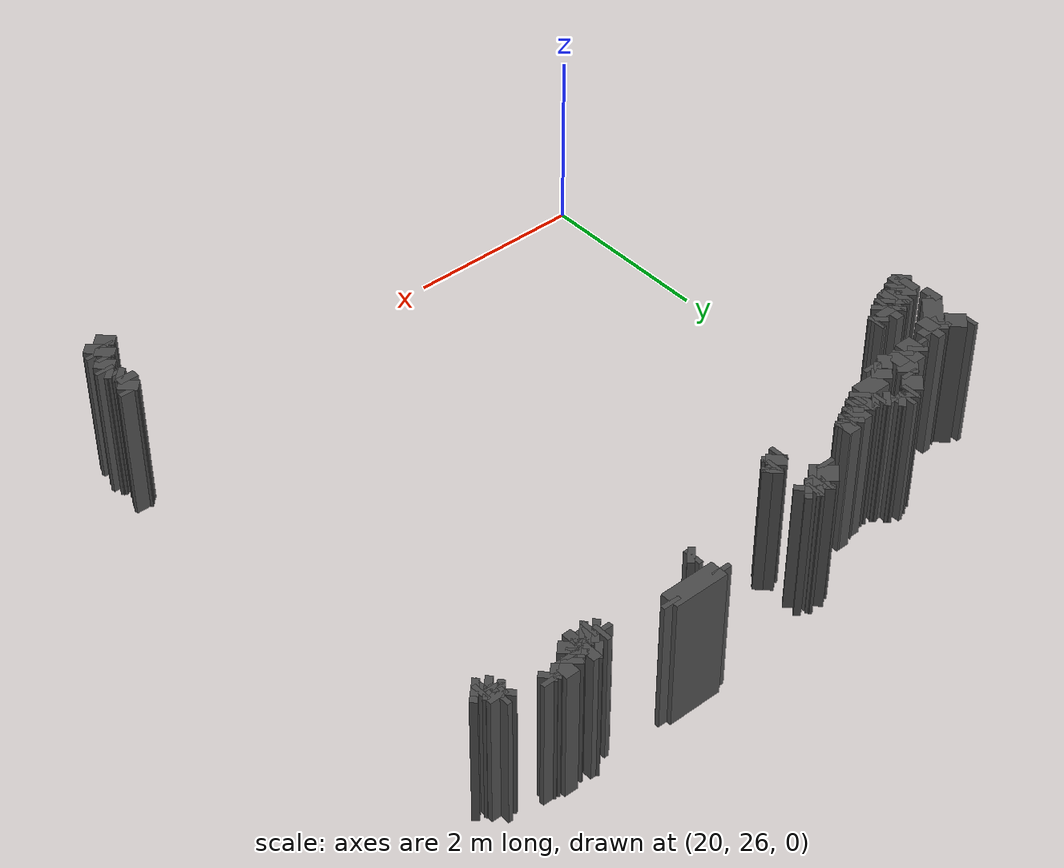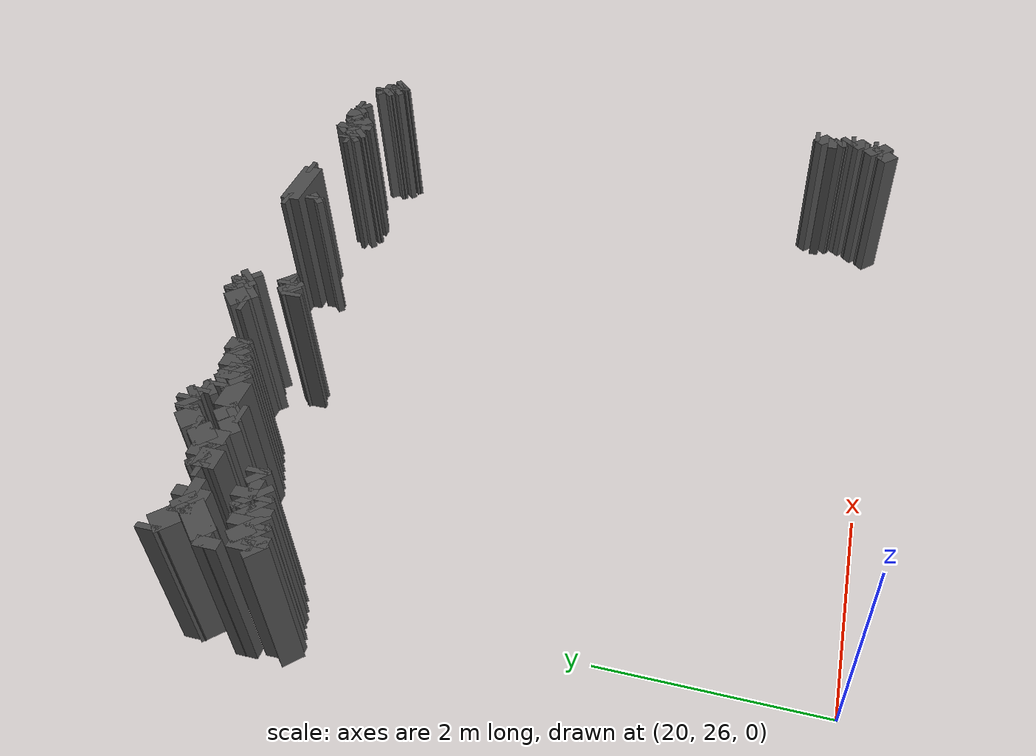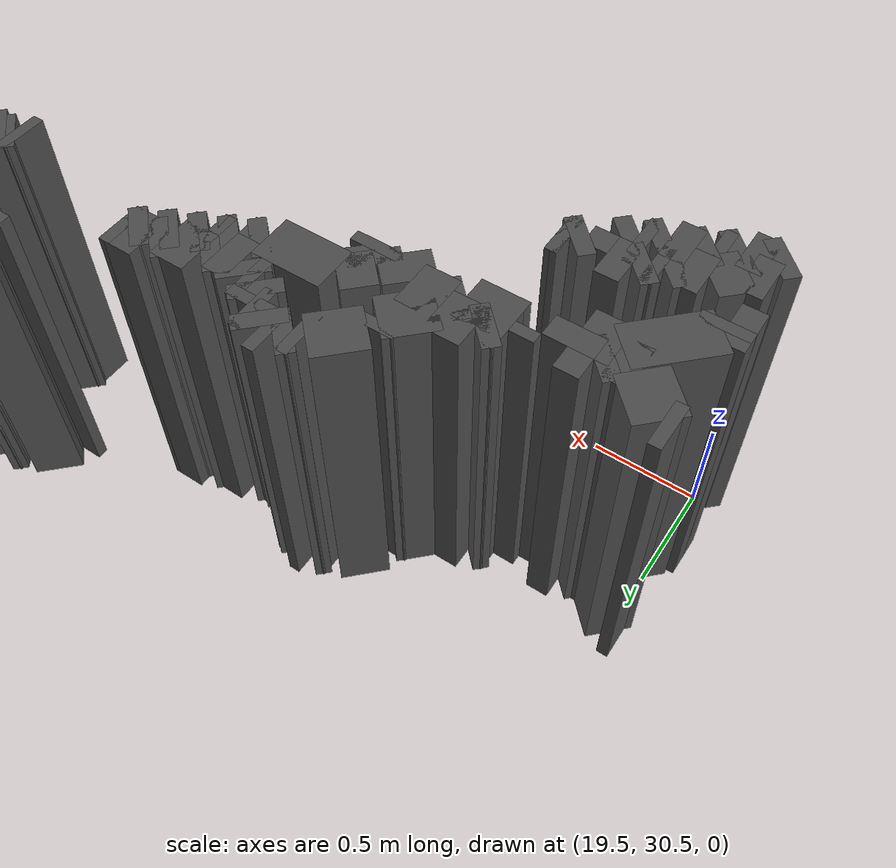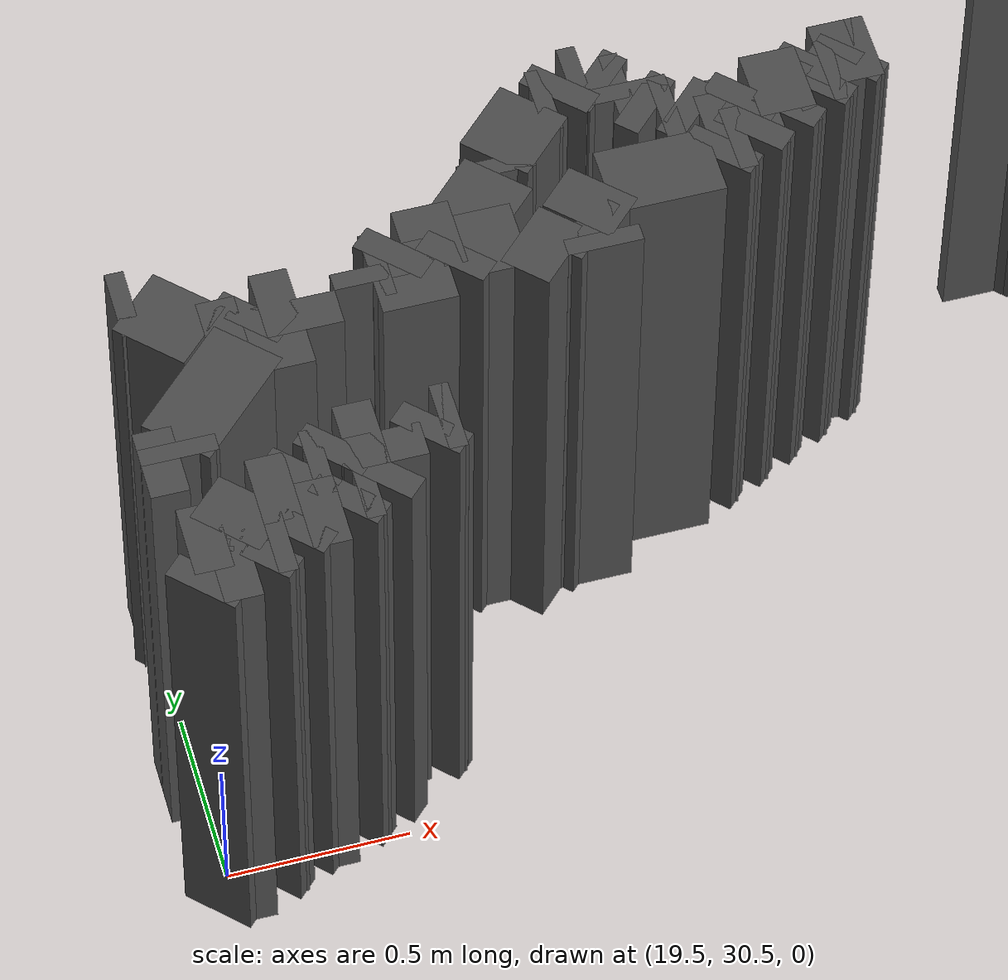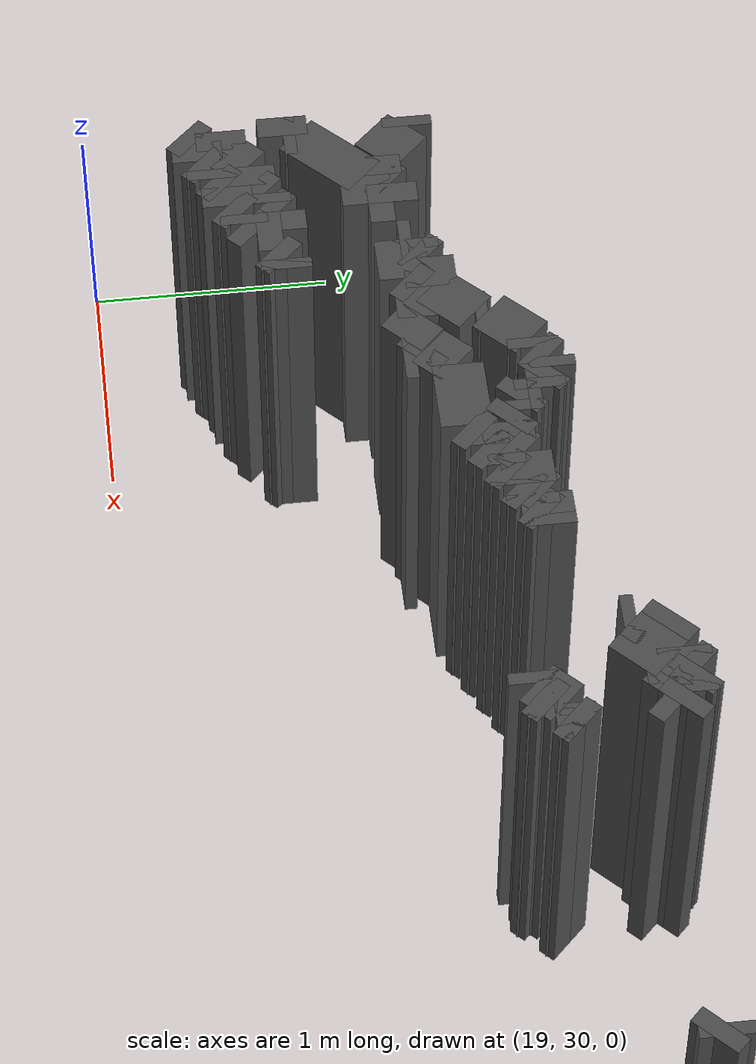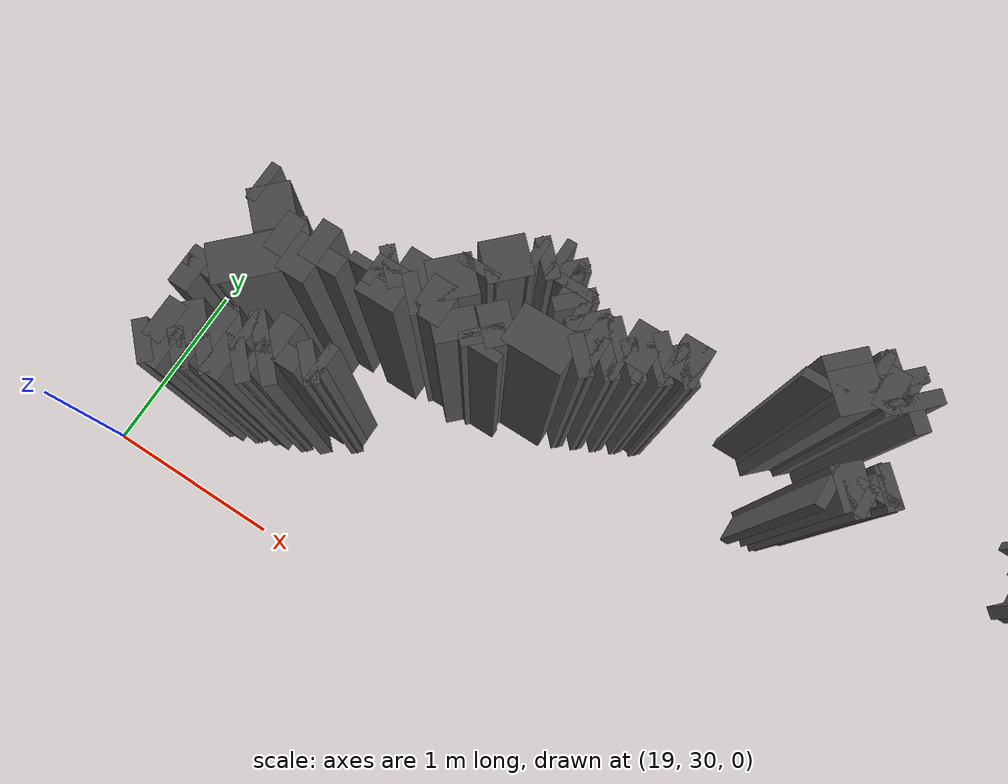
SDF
<sdf version="1.9">
 <model name="generated_walls">
  <static>true</static>
  <link name="wall_27_0">
   <pose>25.025 31.925 0.75 0 0 2.356</pose>
   <collision name="collision"><geometry><box><size>0.071 0.2 1.5</size></box></geometry></collision>
   <visual name="visual">
    <geometry><box><size>0.071 0.2 1.5</size></box></geometry>
    <material><ambient>0.3 0.3 0.3 1</ambient></material>
   </visual>
  </link>
  <link name="wall_27_1">
   <pose>24.975 31.950 0.75 0 0 3.142</pose>
   <collision name="collision"><geometry><box><size>0.050 0.2 1.5</size></box></geometry></collision>
   <visual name="visual">
    <geometry><box><size>0.050 0.2 1.5</size></box></geometry>
    <material><ambient>0.3 0.3 0.3 1</ambient></material>
   </visual>
  </link>
  <link name="wall_27_2">
   <pose>24.925 31.975 0.75 0 0 2.356</pose>
   <collision name="collision"><geometry><box><size>0.071 0.2 1.5</size></box></geometry></collision>
   <visual name="visual">
    <geometry><box><size>0.071 0.2 1.5</size></box></geometry>
    <material><ambient>0.3 0.3 0.3 1</ambient></material>
   </visual>
  </link>
  <link name="wall_27_3">
   <pose>24.900 32.025 0.75 0 0 1.571</pose>
   <collision name="collision"><geometry><box><size>0.050 0.2 1.5</size></box></geometry></collision>
   <visual name="visual">
    <geometry><box><size>0.050 0.2 1.5</size></box></geometry>
    <material><ambient>0.3 0.3 0.3 1</ambient></material>
   </visual>
  </link>
  <link name="wall_27_4">
   <pose>24.925 32.050 0.75 0 0 0.000</pose>
   <collision name="collision"><geometry><box><size>0.050 0.2 1.5</size></box></geometry></collision>
   <visual name="visual">
    <geometry><box><size>0.050 0.2 1.5</size></box></geometry>
    <material><ambient>0.3 0.3 0.3 1</ambient></material>
   </visual>
  </link>
  <link name="wall_27_5">
   <pose>24.975 32.025 0.75 0 0 -0.785</pose>
   <collision name="collision"><geometry><box><size>0.071 0.2 1.5</size></box></geometry></collision>
   <visual name="visual">
    <geometry><box><size>0.071 0.2 1.5</size></box></geometry>
    <material><ambient>0.3 0.3 0.3 1</ambient></material>
   </visual>
  </link>
  <link name="wall_27_6">
   <pose>25.050 32.000 0.75 0 0 0.000</pose>
   <collision name="collision"><geometry><box><size>0.100 0.2 1.5</size></box></geometry></collision>
   <visual name="visual">
    <geometry><box><size>0.100 0.2 1.5</size></box></geometry>
    <material><ambient>0.3 0.3 0.3 1</ambient></material>
   </visual>
  </link>
  <link name="wall_27_7">
   <pose>25.125 32.025 0.75 0 0 0.785</pose>
   <collision name="collision"><geometry><box><size>0.071 0.2 1.5</size></box></geometry></collision>
   <visual name="visual">
    <geometry><box><size>0.071 0.2 1.5</size></box></geometry>
    <material><ambient>0.3 0.3 0.3 1</ambient></material>
   </visual>
  </link>
  <link name="wall_27_8">
   <pose>25.175 32.050 0.75 0 0 0.000</pose>
   <collision name="collision"><geometry><box><size>0.050 0.2 1.5</size></box></geometry></collision>
   <visual name="visual">
    <geometry><box><size>0.050 0.2 1.5</size></box></geometry>
    <material><ambient>0.3 0.3 0.3 1</ambient></material>
   </visual>
  </link>
  <link name="wall_27_9">
   <pose>25.225 32.075 0.75 0 0 0.785</pose>
   <collision name="collision"><geometry><box><size>0.071 0.2 1.5</size></box></geometry></collision>
   <visual name="visual">
    <geometry><box><size>0.071 0.2 1.5</size></box></geometry>
    <material><ambient>0.3 0.3 0.3 1</ambient></material>
   </visual>
  </link>
  <link name="wall_27_10">
   <pose>25.225 32.125 0.75 0 0 2.356</pose>
   <collision name="collision"><geometry><box><size>0.071 0.2 1.5</size></box></geometry></collision>
   <visual name="visual">
    <geometry><box><size>0.071 0.2 1.5</size></box></geometry>
    <material><ambient>0.3 0.3 0.3 1</ambient></material>
   </visual>
  </link>
  <link name="wall_27_11">
   <pose>25.150 32.150 0.75 0 0 3.142</pose>
   <collision name="collision"><geometry><box><size>0.100 0.2 1.5</size></box></geometry></collision>
   <visual name="visual">
    <geometry><box><size>0.100 0.2 1.5</size></box></geometry>
    <material><ambient>0.3 0.3 0.3 1</ambient></material>
   </visual>
  </link>
  <link name="wall_27_12">
   <pose>25.075 32.175 0.75 0 0 2.356</pose>
   <collision name="collision"><geometry><box><size>0.071 0.2 1.5</size></box></geometry></collision>
   <visual name="visual">
    <geometry><box><size>0.071 0.2 1.5</size></box></geometry>
    <material><ambient>0.3 0.3 0.3 1</ambient></material>
   </visual>
  </link>
  <link name="wall_27_17">
   <pose>24.250 32.175 0.75 0 0 -1.571</pose>
   <collision name="collision"><geometry><box><size>0.050 0.2 1.5</size></box></geometry></collision>
   <visual name="visual">
    <geometry><box><size>0.050 0.2 1.5</size></box></geometry>
    <material><ambient>0.3 0.3 0.3 1</ambient></material>
   </visual>
  </link>
  <link name="wall_27_18">
   <pose>23.950 32.150 0.75 0 0 3.142</pose>
   <collision name="collision"><geometry><box><size>0.600 0.2 1.5</size></box></geometry></collision>
   <visual name="visual">
    <geometry><box><size>0.600 0.2 1.5</size></box></geometry>
    <material><ambient>0.3 0.3 0.3 1</ambient></material>
   </visual>
  </link>
  <link name="wall_27_19">
   <pose>23.650 32.175 0.75 0 0 1.571</pose>
   <collision name="collision"><geometry><box><size>0.050 0.2 1.5</size></box></geometry></collision>
   <visual name="visual">
    <geometry><box><size>0.050 0.2 1.5</size></box></geometry>
    <material><ambient>0.3 0.3 0.3 1</ambient></material>
   </visual>
  </link>
  <link name="wall_27_52">
   <pose>25.600 32.175 0.75 0 0 -1.571</pose>
   <collision name="collision"><geometry><box><size>0.050 0.2 1.5</size></box></geometry></collision>
   <visual name="visual">
    <geometry><box><size>0.050 0.2 1.5</size></box></geometry>
    <material><ambient>0.3 0.3 0.3 1</ambient></material>
   </visual>
  </link>
  <link name="wall_27_53">
   <pose>25.575 32.125 0.75 0 0 -2.356</pose>
   <collision name="collision"><geometry><box><size>0.071 0.2 1.5</size></box></geometry></collision>
   <visual name="visual">
    <geometry><box><size>0.071 0.2 1.5</size></box></geometry>
    <material><ambient>0.3 0.3 0.3 1</ambient></material>
   </visual>
  </link>
  <link name="wall_27_54">
   <pose>25.525 32.125 0.75 0 0 2.356</pose>
   <collision name="collision"><geometry><box><size>0.071 0.2 1.5</size></box></geometry></collision>
   <visual name="visual">
    <geometry><box><size>0.071 0.2 1.5</size></box></geometry>
    <material><ambient>0.3 0.3 0.3 1</ambient></material>
   </visual>
  </link>
  <link name="wall_27_55">
   <pose>25.425 32.150 0.75 0 0 3.142</pose>
   <collision name="collision"><geometry><box><size>0.150 0.2 1.5</size></box></geometry></collision>
   <visual name="visual">
    <geometry><box><size>0.150 0.2 1.5</size></box></geometry>
    <material><ambient>0.3 0.3 0.3 1</ambient></material>
   </visual>
  </link>
  <link name="wall_27_56">
   <pose>25.325 32.125 0.75 0 0 -2.356</pose>
   <collision name="collision"><geometry><box><size>0.071 0.2 1.5</size></box></geometry></collision>
   <visual name="visual">
    <geometry><box><size>0.071 0.2 1.5</size></box></geometry>
    <material><ambient>0.3 0.3 0.3 1</ambient></material>
   </visual>
  </link>
  <link name="wall_27_57">
   <pose>25.300 32.075 0.75 0 0 -1.571</pose>
   <collision name="collision"><geometry><box><size>0.050 0.2 1.5</size></box></geometry></collision>
   <visual name="visual">
    <geometry><box><size>0.050 0.2 1.5</size></box></geometry>
    <material><ambient>0.3 0.3 0.3 1</ambient></material>
   </visual>
  </link>
  <link name="wall_27_58">
   <pose>25.250 32.000 0.75 0 0 -2.356</pose>
   <collision name="collision"><geometry><box><size>0.141 0.2 1.5</size></box></geometry></collision>
   <visual name="visual">
    <geometry><box><size>0.141 0.2 1.5</size></box></geometry>
    <material><ambient>0.3 0.3 0.3 1</ambient></material>
   </visual>
  </link>
  <link name="wall_27_59">
   <pose>25.150 31.950 0.75 0 0 3.142</pose>
   <collision name="collision"><geometry><box><size>0.100 0.2 1.5</size></box></geometry></collision>
   <visual name="visual">
    <geometry><box><size>0.100 0.2 1.5</size></box></geometry>
    <material><ambient>0.3 0.3 0.3 1</ambient></material>
   </visual>
  </link>
  <link name="wall_28_0">
   <pose>23.725 31.875 0.75 0 0 2.356</pose>
   <collision name="collision"><geometry><box><size>0.071 0.2 1.5</size></box></geometry></collision>
   <visual name="visual">
    <geometry><box><size>0.071 0.2 1.5</size></box></geometry>
    <material><ambient>0.3 0.3 0.3 1</ambient></material>
   </visual>
  </link>
  <link name="wall_28_1">
   <pose>23.725 31.900 0.75 0 0 0.000</pose>
   <collision name="collision"><geometry><box><size>0.050 0.2 1.5</size></box></geometry></collision>
   <visual name="visual">
    <geometry><box><size>0.050 0.2 1.5</size></box></geometry>
    <material><ambient>0.3 0.3 0.3 1</ambient></material>
   </visual>
  </link>
  <link name="wall_29_0">
   <pose>22.000 31.825 0.75 0 0 1.571</pose>
   <collision name="collision"><geometry><box><size>0.050 0.2 1.5</size></box></geometry></collision>
   <visual name="visual">
    <geometry><box><size>0.050 0.2 1.5</size></box></geometry>
    <material><ambient>0.3 0.3 0.3 1</ambient></material>
   </visual>
  </link>
  <link name="wall_29_1">
   <pose>22.075 31.925 0.75 0 0 0.785</pose>
   <collision name="collision"><geometry><box><size>0.212 0.2 1.5</size></box></geometry></collision>
   <visual name="visual">
    <geometry><box><size>0.212 0.2 1.5</size></box></geometry>
    <material><ambient>0.3 0.3 0.3 1</ambient></material>
   </visual>
  </link>
  <link name="wall_29_2">
   <pose>22.175 32.000 0.75 0 0 0.000</pose>
   <collision name="collision"><geometry><box><size>0.050 0.2 1.5</size></box></geometry></collision>
   <visual name="visual">
    <geometry><box><size>0.050 0.2 1.5</size></box></geometry>
    <material><ambient>0.3 0.3 0.3 1</ambient></material>
   </visual>
  </link>
  <link name="wall_29_3">
   <pose>22.225 32.025 0.75 0 0 0.785</pose>
   <collision name="collision"><geometry><box><size>0.071 0.2 1.5</size></box></geometry></collision>
   <visual name="visual">
    <geometry><box><size>0.071 0.2 1.5</size></box></geometry>
    <material><ambient>0.3 0.3 0.3 1</ambient></material>
   </visual>
  </link>
  <link name="wall_29_4">
   <pose>22.275 32.025 0.75 0 0 -0.785</pose>
   <collision name="collision"><geometry><box><size>0.071 0.2 1.5</size></box></geometry></collision>
   <visual name="visual">
    <geometry><box><size>0.071 0.2 1.5</size></box></geometry>
    <material><ambient>0.3 0.3 0.3 1</ambient></material>
   </visual>
  </link>
  <link name="wall_29_5">
   <pose>22.325 32.000 0.75 0 0 0.000</pose>
   <collision name="collision"><geometry><box><size>0.050 0.2 1.5</size></box></geometry></collision>
   <visual name="visual">
    <geometry><box><size>0.050 0.2 1.5</size></box></geometry>
    <material><ambient>0.3 0.3 0.3 1</ambient></material>
   </visual>
  </link>
  <link name="wall_29_6">
   <pose>22.375 31.975 0.75 0 0 -0.785</pose>
   <collision name="collision"><geometry><box><size>0.071 0.2 1.5</size></box></geometry></collision>
   <visual name="visual">
    <geometry><box><size>0.071 0.2 1.5</size></box></geometry>
    <material><ambient>0.3 0.3 0.3 1</ambient></material>
   </visual>
  </link>
  <link name="wall_29_7">
   <pose>22.375 31.925 0.75 0 0 -2.356</pose>
   <collision name="collision"><geometry><box><size>0.071 0.2 1.5</size></box></geometry></collision>
   <visual name="visual">
    <geometry><box><size>0.071 0.2 1.5</size></box></geometry>
    <material><ambient>0.3 0.3 0.3 1</ambient></material>
   </visual>
  </link>
  <link name="wall_29_8">
   <pose>22.325 31.925 0.75 0 0 2.356</pose>
   <collision name="collision"><geometry><box><size>0.071 0.2 1.5</size></box></geometry></collision>
   <visual name="visual">
    <geometry><box><size>0.071 0.2 1.5</size></box></geometry>
    <material><ambient>0.3 0.3 0.3 1</ambient></material>
   </visual>
  </link>
  <link name="wall_29_9">
   <pose>22.250 31.950 0.75 0 0 3.142</pose>
   <collision name="collision"><geometry><box><size>0.100 0.2 1.5</size></box></geometry></collision>
   <visual name="visual">
    <geometry><box><size>0.100 0.2 1.5</size></box></geometry>
    <material><ambient>0.3 0.3 0.3 1</ambient></material>
   </visual>
  </link>
  <link name="wall_29_10">
   <pose>22.125 31.875 0.75 0 0 -2.356</pose>
   <collision name="collision"><geometry><box><size>0.212 0.2 1.5</size></box></geometry></collision>
   <visual name="visual">
    <geometry><box><size>0.212 0.2 1.5</size></box></geometry>
    <material><ambient>0.3 0.3 0.3 1</ambient></material>
   </visual>
  </link>
  <link name="wall_32_0">
   <pose>22.225 31.450 0.75 0 0 0.000</pose>
   <collision name="collision"><geometry><box><size>0.050 0.2 1.5</size></box></geometry></collision>
   <visual name="visual">
    <geometry><box><size>0.050 0.2 1.5</size></box></geometry>
    <material><ambient>0.3 0.3 0.3 1</ambient></material>
   </visual>
  </link>
  <link name="wall_32_1">
   <pose>22.300 31.500 0.75 0 0 0.785</pose>
   <collision name="collision"><geometry><box><size>0.141 0.2 1.5</size></box></geometry></collision>
   <visual name="visual">
    <geometry><box><size>0.141 0.2 1.5</size></box></geometry>
    <material><ambient>0.3 0.3 0.3 1</ambient></material>
   </visual>
  </link>
  <link name="wall_32_2">
   <pose>22.375 31.550 0.75 0 0 0.000</pose>
   <collision name="collision"><geometry><box><size>0.050 0.2 1.5</size></box></geometry></collision>
   <visual name="visual">
    <geometry><box><size>0.050 0.2 1.5</size></box></geometry>
    <material><ambient>0.3 0.3 0.3 1</ambient></material>
   </visual>
  </link>
  <link name="wall_32_3">
   <pose>22.425 31.575 0.75 0 0 0.785</pose>
   <collision name="collision"><geometry><box><size>0.071 0.2 1.5</size></box></geometry></collision>
   <visual name="visual">
    <geometry><box><size>0.071 0.2 1.5</size></box></geometry>
    <material><ambient>0.3 0.3 0.3 1</ambient></material>
   </visual>
  </link>
  <link name="wall_32_4">
   <pose>22.425 31.575 0.75 0 0 -2.356</pose>
   <collision name="collision"><geometry><box><size>0.071 0.2 1.5</size></box></geometry></collision>
   <visual name="visual">
    <geometry><box><size>0.071 0.2 1.5</size></box></geometry>
    <material><ambient>0.3 0.3 0.3 1</ambient></material>
   </visual>
  </link>
  <link name="wall_32_5">
   <pose>22.400 31.525 0.75 0 0 -1.571</pose>
   <collision name="collision"><geometry><box><size>0.050 0.2 1.5</size></box></geometry></collision>
   <visual name="visual">
    <geometry><box><size>0.050 0.2 1.5</size></box></geometry>
    <material><ambient>0.3 0.3 0.3 1</ambient></material>
   </visual>
  </link>
  <link name="wall_32_6">
   <pose>22.375 31.500 0.75 0 0 3.142</pose>
   <collision name="collision"><geometry><box><size>0.050 0.2 1.5</size></box></geometry></collision>
   <visual name="visual">
    <geometry><box><size>0.050 0.2 1.5</size></box></geometry>
    <material><ambient>0.3 0.3 0.3 1</ambient></material>
   </visual>
  </link>
  <link name="wall_32_7">
   <pose>22.325 31.475 0.75 0 0 -2.356</pose>
   <collision name="collision"><geometry><box><size>0.071 0.2 1.5</size></box></geometry></collision>
   <visual name="visual">
    <geometry><box><size>0.071 0.2 1.5</size></box></geometry>
    <material><ambient>0.3 0.3 0.3 1</ambient></material>
   </visual>
  </link>
  <link name="wall_33_0">
   <pose>20.550 31.200 0.75 0 0 2.356</pose>
   <collision name="collision"><geometry><box><size>0.141 0.2 1.5</size></box></geometry></collision>
   <visual name="visual">
    <geometry><box><size>0.141 0.2 1.5</size></box></geometry>
    <material><ambient>0.3 0.3 0.3 1</ambient></material>
   </visual>
  </link>
  <link name="wall_33_1">
   <pose>20.425 31.250 0.75 0 0 3.142</pose>
   <collision name="collision"><geometry><box><size>0.150 0.2 1.5</size></box></geometry></collision>
   <visual name="visual">
    <geometry><box><size>0.150 0.2 1.5</size></box></geometry>
    <material><ambient>0.3 0.3 0.3 1</ambient></material>
   </visual>
  </link>
  <link name="wall_33_2">
   <pose>20.325 31.225 0.75 0 0 -2.356</pose>
   <collision name="collision"><geometry><box><size>0.071 0.2 1.5</size></box></geometry></collision>
   <visual name="visual">
    <geometry><box><size>0.071 0.2 1.5</size></box></geometry>
    <material><ambient>0.3 0.3 0.3 1</ambient></material>
   </visual>
  </link>
  <link name="wall_33_3">
   <pose>20.200 31.200 0.75 0 0 3.142</pose>
   <collision name="collision"><geometry><box><size>0.200 0.2 1.5</size></box></geometry></collision>
   <visual name="visual">
    <geometry><box><size>0.200 0.2 1.5</size></box></geometry>
    <material><ambient>0.3 0.3 0.3 1</ambient></material>
   </visual>
  </link>
  <link name="wall_33_4">
   <pose>20.100 31.225 0.75 0 0 1.571</pose>
   <collision name="collision"><geometry><box><size>0.050 0.2 1.5</size></box></geometry></collision>
   <visual name="visual">
    <geometry><box><size>0.050 0.2 1.5</size></box></geometry>
    <material><ambient>0.3 0.3 0.3 1</ambient></material>
   </visual>
  </link>
  <link name="wall_33_5">
   <pose>20.125 31.250 0.75 0 0 0.000</pose>
   <collision name="collision"><geometry><box><size>0.050 0.2 1.5</size></box></geometry></collision>
   <visual name="visual">
    <geometry><box><size>0.050 0.2 1.5</size></box></geometry>
    <material><ambient>0.3 0.3 0.3 1</ambient></material>
   </visual>
  </link>
  <link name="wall_33_6">
   <pose>20.175 31.275 0.75 0 0 0.785</pose>
   <collision name="collision"><geometry><box><size>0.071 0.2 1.5</size></box></geometry></collision>
   <visual name="visual">
    <geometry><box><size>0.071 0.2 1.5</size></box></geometry>
    <material><ambient>0.3 0.3 0.3 1</ambient></material>
   </visual>
  </link>
  <link name="wall_33_7">
   <pose>20.275 31.300 0.75 0 0 0.000</pose>
   <collision name="collision"><geometry><box><size>0.150 0.2 1.5</size></box></geometry></collision>
   <visual name="visual">
    <geometry><box><size>0.150 0.2 1.5</size></box></geometry>
    <material><ambient>0.3 0.3 0.3 1</ambient></material>
   </visual>
  </link>
  <link name="wall_33_8">
   <pose>20.425 31.375 0.75 0 0 0.785</pose>
   <collision name="collision"><geometry><box><size>0.212 0.2 1.5</size></box></geometry></collision>
   <visual name="visual">
    <geometry><box><size>0.212 0.2 1.5</size></box></geometry>
    <material><ambient>0.3 0.3 0.3 1</ambient></material>
   </visual>
  </link>
  <link name="wall_33_9">
   <pose>20.500 31.475 0.75 0 0 1.571</pose>
   <collision name="collision"><geometry><box><size>0.050 0.2 1.5</size></box></geometry></collision>
   <visual name="visual">
    <geometry><box><size>0.050 0.2 1.5</size></box></geometry>
    <material><ambient>0.3 0.3 0.3 1</ambient></material>
   </visual>
  </link>
  <link name="wall_33_10">
   <pose>20.575 31.575 0.75 0 0 0.785</pose>
   <collision name="collision"><geometry><box><size>0.212 0.2 1.5</size></box></geometry></collision>
   <visual name="visual">
    <geometry><box><size>0.212 0.2 1.5</size></box></geometry>
    <material><ambient>0.3 0.3 0.3 1</ambient></material>
   </visual>
  </link>
  <link name="wall_33_11">
   <pose>20.675 31.650 0.75 0 0 0.000</pose>
   <collision name="collision"><geometry><box><size>0.050 0.2 1.5</size></box></geometry></collision>
   <visual name="visual">
    <geometry><box><size>0.050 0.2 1.5</size></box></geometry>
    <material><ambient>0.3 0.3 0.3 1</ambient></material>
   </visual>
  </link>
  <link name="wall_33_12">
   <pose>20.725 31.675 0.75 0 0 0.785</pose>
   <collision name="collision"><geometry><box><size>0.071 0.2 1.5</size></box></geometry></collision>
   <visual name="visual">
    <geometry><box><size>0.071 0.2 1.5</size></box></geometry>
    <material><ambient>0.3 0.3 0.3 1</ambient></material>
   </visual>
  </link>
  <link name="wall_33_13">
   <pose>20.775 31.700 0.75 0 0 0.000</pose>
   <collision name="collision"><geometry><box><size>0.050 0.2 1.5</size></box></geometry></collision>
   <visual name="visual">
    <geometry><box><size>0.050 0.2 1.5</size></box></geometry>
    <material><ambient>0.3 0.3 0.3 1</ambient></material>
   </visual>
  </link>
  <link name="wall_33_14">
   <pose>20.825 31.675 0.75 0 0 -0.785</pose>
   <collision name="collision"><geometry><box><size>0.071 0.2 1.5</size></box></geometry></collision>
   <visual name="visual">
    <geometry><box><size>0.071 0.2 1.5</size></box></geometry>
    <material><ambient>0.3 0.3 0.3 1</ambient></material>
   </visual>
  </link>
  <link name="wall_33_15">
   <pose>20.875 31.650 0.75 0 0 0.000</pose>
   <collision name="collision"><geometry><box><size>0.050 0.2 1.5</size></box></geometry></collision>
   <visual name="visual">
    <geometry><box><size>0.050 0.2 1.5</size></box></geometry>
    <material><ambient>0.3 0.3 0.3 1</ambient></material>
   </visual>
  </link>
  <link name="wall_33_16">
   <pose>20.900 31.625 0.75 0 0 -1.571</pose>
   <collision name="collision"><geometry><box><size>0.050 0.2 1.5</size></box></geometry></collision>
   <visual name="visual">
    <geometry><box><size>0.050 0.2 1.5</size></box></geometry>
    <material><ambient>0.3 0.3 0.3 1</ambient></material>
   </visual>
  </link>
  <link name="wall_33_17">
   <pose>20.925 31.575 0.75 0 0 -0.785</pose>
   <collision name="collision"><geometry><box><size>0.071 0.2 1.5</size></box></geometry></collision>
   <visual name="visual">
    <geometry><box><size>0.071 0.2 1.5</size></box></geometry>
    <material><ambient>0.3 0.3 0.3 1</ambient></material>
   </visual>
  </link>
  <link name="wall_33_18">
   <pose>20.975 31.550 0.75 0 0 0.000</pose>
   <collision name="collision"><geometry><box><size>0.050 0.2 1.5</size></box></geometry></collision>
   <visual name="visual">
    <geometry><box><size>0.050 0.2 1.5</size></box></geometry>
    <material><ambient>0.3 0.3 0.3 1</ambient></material>
   </visual>
  </link>
  <link name="wall_33_19">
   <pose>21.025 31.525 0.75 0 0 -0.785</pose>
   <collision name="collision"><geometry><box><size>0.071 0.2 1.5</size></box></geometry></collision>
   <visual name="visual">
    <geometry><box><size>0.071 0.2 1.5</size></box></geometry>
    <material><ambient>0.3 0.3 0.3 1</ambient></material>
   </visual>
  </link>
  <link name="wall_33_20">
   <pose>21.100 31.500 0.75 0 0 0.000</pose>
   <collision name="collision"><geometry><box><size>0.100 0.2 1.5</size></box></geometry></collision>
   <visual name="visual">
    <geometry><box><size>0.100 0.2 1.5</size></box></geometry>
    <material><ambient>0.3 0.3 0.3 1</ambient></material>
   </visual>
  </link>
  <link name="wall_33_21">
   <pose>21.175 31.525 0.75 0 0 0.785</pose>
   <collision name="collision"><geometry><box><size>0.071 0.2 1.5</size></box></geometry></collision>
   <visual name="visual">
    <geometry><box><size>0.071 0.2 1.5</size></box></geometry>
    <material><ambient>0.3 0.3 0.3 1</ambient></material>
   </visual>
  </link>
  <link name="wall_33_22">
   <pose>21.275 31.550 0.75 0 0 0.000</pose>
   <collision name="collision"><geometry><box><size>0.150 0.2 1.5</size></box></geometry></collision>
   <visual name="visual">
    <geometry><box><size>0.150 0.2 1.5</size></box></geometry>
    <material><ambient>0.3 0.3 0.3 1</ambient></material>
   </visual>
  </link>
  <link name="wall_33_23">
   <pose>21.375 31.575 0.75 0 0 0.785</pose>
   <collision name="collision"><geometry><box><size>0.071 0.2 1.5</size></box></geometry></collision>
   <visual name="visual">
    <geometry><box><size>0.071 0.2 1.5</size></box></geometry>
    <material><ambient>0.3 0.3 0.3 1</ambient></material>
   </visual>
  </link>
  <link name="wall_33_24">
   <pose>21.475 31.600 0.75 0 0 0.000</pose>
   <collision name="collision"><geometry><box><size>0.150 0.2 1.5</size></box></geometry></collision>
   <visual name="visual">
    <geometry><box><size>0.150 0.2 1.5</size></box></geometry>
    <material><ambient>0.3 0.3 0.3 1</ambient></material>
   </visual>
  </link>
  <link name="wall_33_25">
   <pose>21.525 31.600 0.75 0 0 3.142</pose>
   <collision name="collision"><geometry><box><size>0.050 0.2 1.5</size></box></geometry></collision>
   <visual name="visual">
    <geometry><box><size>0.050 0.2 1.5</size></box></geometry>
    <material><ambient>0.3 0.3 0.3 1</ambient></material>
   </visual>
  </link>
  <link name="wall_33_26">
   <pose>21.475 31.575 0.75 0 0 -2.356</pose>
   <collision name="collision"><geometry><box><size>0.071 0.2 1.5</size></box></geometry></collision>
   <visual name="visual">
    <geometry><box><size>0.071 0.2 1.5</size></box></geometry>
    <material><ambient>0.3 0.3 0.3 1</ambient></material>
   </visual>
  </link>
  <link name="wall_33_27">
   <pose>21.425 31.550 0.75 0 0 3.142</pose>
   <collision name="collision"><geometry><box><size>0.050 0.2 1.5</size></box></geometry></collision>
   <visual name="visual">
    <geometry><box><size>0.050 0.2 1.5</size></box></geometry>
    <material><ambient>0.3 0.3 0.3 1</ambient></material>
   </visual>
  </link>
  <link name="wall_33_28">
   <pose>21.375 31.525 0.75 0 0 -2.356</pose>
   <collision name="collision"><geometry><box><size>0.071 0.2 1.5</size></box></geometry></collision>
   <visual name="visual">
    <geometry><box><size>0.071 0.2 1.5</size></box></geometry>
    <material><ambient>0.3 0.3 0.3 1</ambient></material>
   </visual>
  </link>
  <link name="wall_33_29">
   <pose>21.325 31.500 0.75 0 0 3.142</pose>
   <collision name="collision"><geometry><box><size>0.050 0.2 1.5</size></box></geometry></collision>
   <visual name="visual">
    <geometry><box><size>0.050 0.2 1.5</size></box></geometry>
    <material><ambient>0.3 0.3 0.3 1</ambient></material>
   </visual>
  </link>
  <link name="wall_33_30">
   <pose>21.275 31.475 0.75 0 0 -2.356</pose>
   <collision name="collision"><geometry><box><size>0.071 0.2 1.5</size></box></geometry></collision>
   <visual name="visual">
    <geometry><box><size>0.071 0.2 1.5</size></box></geometry>
    <material><ambient>0.3 0.3 0.3 1</ambient></material>
   </visual>
  </link>
  <link name="wall_33_31">
   <pose>21.225 31.450 0.75 0 0 3.142</pose>
   <collision name="collision"><geometry><box><size>0.050 0.2 1.5</size></box></geometry></collision>
   <visual name="visual">
    <geometry><box><size>0.050 0.2 1.5</size></box></geometry>
    <material><ambient>0.3 0.3 0.3 1</ambient></material>
   </visual>
  </link>
  <link name="wall_33_32">
   <pose>21.175 31.425 0.75 0 0 -2.356</pose>
   <collision name="collision"><geometry><box><size>0.071 0.2 1.5</size></box></geometry></collision>
   <visual name="visual">
    <geometry><box><size>0.071 0.2 1.5</size></box></geometry>
    <material><ambient>0.3 0.3 0.3 1</ambient></material>
   </visual>
  </link>
  <link name="wall_33_33">
   <pose>21.125 31.400 0.75 0 0 3.142</pose>
   <collision name="collision"><geometry><box><size>0.050 0.2 1.5</size></box></geometry></collision>
   <visual name="visual">
    <geometry><box><size>0.050 0.2 1.5</size></box></geometry>
    <material><ambient>0.3 0.3 0.3 1</ambient></material>
   </visual>
  </link>
  <link name="wall_33_34">
   <pose>21.075 31.375 0.75 0 0 -2.356</pose>
   <collision name="collision"><geometry><box><size>0.071 0.2 1.5</size></box></geometry></collision>
   <visual name="visual">
    <geometry><box><size>0.071 0.2 1.5</size></box></geometry>
    <material><ambient>0.3 0.3 0.3 1</ambient></material>
   </visual>
  </link>
  <link name="wall_33_35">
   <pose>20.900 31.350 0.75 0 0 3.142</pose>
   <collision name="collision"><geometry><box><size>0.300 0.2 1.5</size></box></geometry></collision>
   <visual name="visual">
    <geometry><box><size>0.300 0.2 1.5</size></box></geometry>
    <material><ambient>0.3 0.3 0.3 1</ambient></material>
   </visual>
  </link>
  <link name="wall_33_36">
   <pose>20.700 31.300 0.75 0 0 -2.356</pose>
   <collision name="collision"><geometry><box><size>0.141 0.2 1.5</size></box></geometry></collision>
   <visual name="visual">
    <geometry><box><size>0.141 0.2 1.5</size></box></geometry>
    <material><ambient>0.3 0.3 0.3 1</ambient></material>
   </visual>
  </link>
  <link name="wall_33_37">
   <pose>20.675 31.225 0.75 0 0 -0.785</pose>
   <collision name="collision"><geometry><box><size>0.071 0.2 1.5</size></box></geometry></collision>
   <visual name="visual">
    <geometry><box><size>0.071 0.2 1.5</size></box></geometry>
    <material><ambient>0.3 0.3 0.3 1</ambient></material>
   </visual>
  </link>
  <link name="wall_33_38">
   <pose>20.700 31.175 0.75 0 0 -1.571</pose>
   <collision name="collision"><geometry><box><size>0.050 0.2 1.5</size></box></geometry></collision>
   <visual name="visual">
    <geometry><box><size>0.050 0.2 1.5</size></box></geometry>
    <material><ambient>0.3 0.3 0.3 1</ambient></material>
   </visual>
  </link>
  <link name="wall_41_0">
   <pose>20.125 30.725 0.75 0 0 0.785</pose>
   <collision name="collision"><geometry><box><size>0.071 0.2 1.5</size></box></geometry></collision>
   <visual name="visual">
    <geometry><box><size>0.071 0.2 1.5</size></box></geometry>
    <material><ambient>0.3 0.3 0.3 1</ambient></material>
   </visual>
  </link>
  <link name="wall_41_1">
   <pose>20.175 30.750 0.75 0 0 0.000</pose>
   <collision name="collision"><geometry><box><size>0.050 0.2 1.5</size></box></geometry></collision>
   <visual name="visual">
    <geometry><box><size>0.050 0.2 1.5</size></box></geometry>
    <material><ambient>0.3 0.3 0.3 1</ambient></material>
   </visual>
  </link>
  <link name="wall_41_2">
   <pose>20.175 30.750 0.75 0 0 3.142</pose>
   <collision name="collision"><geometry><box><size>0.050 0.2 1.5</size></box></geometry></collision>
   <visual name="visual">
    <geometry><box><size>0.050 0.2 1.5</size></box></geometry>
    <material><ambient>0.3 0.3 0.3 1</ambient></material>
   </visual>
  </link>
  <link name="wall_161_427">
   <pose>19.475 31.300 0.75 0 0 0.000</pose>
   <collision name="collision"><geometry><box><size>0.050 0.2 1.5</size></box></geometry></collision>
   <visual name="visual">
    <geometry><box><size>0.050 0.2 1.5</size></box></geometry>
    <material><ambient>0.3 0.3 0.3 1</ambient></material>
   </visual>
  </link>
  <link name="wall_161_428">
   <pose>19.575 31.225 0.75 0 0 -0.785</pose>
   <collision name="collision"><geometry><box><size>0.212 0.2 1.5</size></box></geometry></collision>
   <visual name="visual">
    <geometry><box><size>0.212 0.2 1.5</size></box></geometry>
    <material><ambient>0.3 0.3 0.3 1</ambient></material>
   </visual>
  </link>
  <link name="wall_161_429">
   <pose>19.700 31.150 0.75 0 0 0.000</pose>
   <collision name="collision"><geometry><box><size>0.100 0.2 1.5</size></box></geometry></collision>
   <visual name="visual">
    <geometry><box><size>0.100 0.2 1.5</size></box></geometry>
    <material><ambient>0.3 0.3 0.3 1</ambient></material>
   </visual>
  </link>
  <link name="wall_161_430">
   <pose>19.775 31.175 0.75 0 0 0.785</pose>
   <collision name="collision"><geometry><box><size>0.071 0.2 1.5</size></box></geometry></collision>
   <visual name="visual">
    <geometry><box><size>0.071 0.2 1.5</size></box></geometry>
    <material><ambient>0.3 0.3 0.3 1</ambient></material>
   </visual>
  </link>
  <link name="wall_161_431">
   <pose>19.850 31.200 0.75 0 0 0.000</pose>
   <collision name="collision"><geometry><box><size>0.100 0.2 1.5</size></box></geometry></collision>
   <visual name="visual">
    <geometry><box><size>0.100 0.2 1.5</size></box></geometry>
    <material><ambient>0.3 0.3 0.3 1</ambient></material>
   </visual>
  </link>
  <link name="wall_161_432">
   <pose>19.900 31.150 0.75 0 0 -1.571</pose>
   <collision name="collision"><geometry><box><size>0.100 0.2 1.5</size></box></geometry></collision>
   <visual name="visual">
    <geometry><box><size>0.100 0.2 1.5</size></box></geometry>
    <material><ambient>0.3 0.3 0.3 1</ambient></material>
   </visual>
  </link>
  <link name="wall_161_433">
   <pose>19.825 31.100 0.75 0 0 3.142</pose>
   <collision name="collision"><geometry><box><size>0.150 0.2 1.5</size></box></geometry></collision>
   <visual name="visual">
    <geometry><box><size>0.150 0.2 1.5</size></box></geometry>
    <material><ambient>0.3 0.3 0.3 1</ambient></material>
   </visual>
  </link>
  <link name="wall_161_434">
   <pose>19.625 30.975 0.75 0 0 -2.356</pose>
   <collision name="collision"><geometry><box><size>0.354 0.2 1.5</size></box></geometry></collision>
   <visual name="visual">
    <geometry><box><size>0.354 0.2 1.5</size></box></geometry>
    <material><ambient>0.3 0.3 0.3 1</ambient></material>
   </visual>
  </link>
  <link name="wall_161_435">
   <pose>19.500 30.825 0.75 0 0 -1.571</pose>
   <collision name="collision"><geometry><box><size>0.050 0.2 1.5</size></box></geometry></collision>
   <visual name="visual">
    <geometry><box><size>0.050 0.2 1.5</size></box></geometry>
    <material><ambient>0.3 0.3 0.3 1</ambient></material>
   </visual>
  </link>
  <link name="wall_161_436">
   <pose>19.450 30.800 0.75 0 0 3.142</pose>
   <collision name="collision"><geometry><box><size>0.100 0.2 1.5</size></box></geometry></collision>
   <visual name="visual">
    <geometry><box><size>0.100 0.2 1.5</size></box></geometry>
    <material><ambient>0.3 0.3 0.3 1</ambient></material>
   </visual>
  </link>
  <link name="wall_161_608">
   <pose>19.500 30.550 0.75 0 0 0.000</pose>
   <collision name="collision"><geometry><box><size>0.100 0.2 1.5</size></box></geometry></collision>
   <visual name="visual">
    <geometry><box><size>0.100 0.2 1.5</size></box></geometry>
    <material><ambient>0.3 0.3 0.3 1</ambient></material>
   </visual>
  </link>
  <link name="wall_161_609">
   <pose>19.600 30.600 0.75 0 0 0.785</pose>
   <collision name="collision"><geometry><box><size>0.141 0.2 1.5</size></box></geometry></collision>
   <visual name="visual">
    <geometry><box><size>0.141 0.2 1.5</size></box></geometry>
    <material><ambient>0.3 0.3 0.3 1</ambient></material>
   </visual>
  </link>
  <link name="wall_161_610">
   <pose>19.700 30.650 0.75 0 0 0.000</pose>
   <collision name="collision"><geometry><box><size>0.100 0.2 1.5</size></box></geometry></collision>
   <visual name="visual">
    <geometry><box><size>0.100 0.2 1.5</size></box></geometry>
    <material><ambient>0.3 0.3 0.3 1</ambient></material>
   </visual>
  </link>
  <link name="wall_161_611">
   <pose>19.775 30.675 0.75 0 0 0.785</pose>
   <collision name="collision"><geometry><box><size>0.071 0.2 1.5</size></box></geometry></collision>
   <visual name="visual">
    <geometry><box><size>0.071 0.2 1.5</size></box></geometry>
    <material><ambient>0.3 0.3 0.3 1</ambient></material>
   </visual>
  </link>
  <link name="wall_161_612">
   <pose>19.825 30.700 0.75 0 0 0.000</pose>
   <collision name="collision"><geometry><box><size>0.050 0.2 1.5</size></box></geometry></collision>
   <visual name="visual">
    <geometry><box><size>0.050 0.2 1.5</size></box></geometry>
    <material><ambient>0.3 0.3 0.3 1</ambient></material>
   </visual>
  </link>
  <link name="wall_161_613">
   <pose>19.875 30.725 0.75 0 0 0.785</pose>
   <collision name="collision"><geometry><box><size>0.071 0.2 1.5</size></box></geometry></collision>
   <visual name="visual">
    <geometry><box><size>0.071 0.2 1.5</size></box></geometry>
    <material><ambient>0.3 0.3 0.3 1</ambient></material>
   </visual>
  </link>
  <link name="wall_161_614">
   <pose>19.950 30.750 0.75 0 0 0.000</pose>
   <collision name="collision"><geometry><box><size>0.100 0.2 1.5</size></box></geometry></collision>
   <visual name="visual">
    <geometry><box><size>0.100 0.2 1.5</size></box></geometry>
    <material><ambient>0.3 0.3 0.3 1</ambient></material>
   </visual>
  </link>
  <link name="wall_161_615">
   <pose>20.000 30.700 0.75 0 0 -1.571</pose>
   <collision name="collision"><geometry><box><size>0.100 0.2 1.5</size></box></geometry></collision>
   <visual name="visual">
    <geometry><box><size>0.100 0.2 1.5</size></box></geometry>
    <material><ambient>0.3 0.3 0.3 1</ambient></material>
   </visual>
  </link>
  <link name="wall_161_616">
   <pose>19.975 30.625 0.75 0 0 -2.356</pose>
   <collision name="collision"><geometry><box><size>0.071 0.2 1.5</size></box></geometry></collision>
   <visual name="visual">
    <geometry><box><size>0.071 0.2 1.5</size></box></geometry>
    <material><ambient>0.3 0.3 0.3 1</ambient></material>
   </visual>
  </link>
  <link name="wall_161_617">
   <pose>19.925 30.600 0.75 0 0 3.142</pose>
   <collision name="collision"><geometry><box><size>0.050 0.2 1.5</size></box></geometry></collision>
   <visual name="visual">
    <geometry><box><size>0.050 0.2 1.5</size></box></geometry>
    <material><ambient>0.3 0.3 0.3 1</ambient></material>
   </visual>
  </link>
  <link name="wall_161_618">
   <pose>19.875 30.575 0.75 0 0 -2.356</pose>
   <collision name="collision"><geometry><box><size>0.071 0.2 1.5</size></box></geometry></collision>
   <visual name="visual">
    <geometry><box><size>0.071 0.2 1.5</size></box></geometry>
    <material><ambient>0.3 0.3 0.3 1</ambient></material>
   </visual>
  </link>
  <link name="wall_161_619">
   <pose>19.800 30.550 0.75 0 0 3.142</pose>
   <collision name="collision"><geometry><box><size>0.100 0.2 1.5</size></box></geometry></collision>
   <visual name="visual">
    <geometry><box><size>0.100 0.2 1.5</size></box></geometry>
    <material><ambient>0.3 0.3 0.3 1</ambient></material>
   </visual>
  </link>
  <link name="wall_161_620">
   <pose>19.725 30.525 0.75 0 0 -2.356</pose>
   <collision name="collision"><geometry><box><size>0.071 0.2 1.5</size></box></geometry></collision>
   <visual name="visual">
    <geometry><box><size>0.071 0.2 1.5</size></box></geometry>
    <material><ambient>0.3 0.3 0.3 1</ambient></material>
   </visual>
  </link>
  <link name="wall_161_621">
   <pose>19.675 30.500 0.75 0 0 3.142</pose>
   <collision name="collision"><geometry><box><size>0.050 0.2 1.5</size></box></geometry></collision>
   <visual name="visual">
    <geometry><box><size>0.050 0.2 1.5</size></box></geometry>
    <material><ambient>0.3 0.3 0.3 1</ambient></material>
   </visual>
  </link>
  <link name="wall_161_622">
   <pose>19.625 30.475 0.75 0 0 -2.356</pose>
   <collision name="collision"><geometry><box><size>0.071 0.2 1.5</size></box></geometry></collision>
   <visual name="visual">
    <geometry><box><size>0.071 0.2 1.5</size></box></geometry>
    <material><ambient>0.3 0.3 0.3 1</ambient></material>
   </visual>
  </link>
  <link name="wall_161_623">
   <pose>19.550 30.450 0.75 0 0 3.142</pose>
   <collision name="collision"><geometry><box><size>0.100 0.2 1.5</size></box></geometry></collision>
   <visual name="visual">
    <geometry><box><size>0.100 0.2 1.5</size></box></geometry>
    <material><ambient>0.3 0.3 0.3 1</ambient></material>
   </visual>
  </link>
  <link name="wall_161_624">
   <pose>19.475 30.425 0.75 0 0 -2.356</pose>
   <collision name="collision"><geometry><box><size>0.071 0.2 1.5</size></box></geometry></collision>
   <visual name="visual">
    <geometry><box><size>0.071 0.2 1.5</size></box></geometry>
    <material><ambient>0.3 0.3 0.3 1</ambient></material>
   </visual>
  </link>
  <link name="wall_161_1997">
   <pose>25.950 26.100 0.75 0 0 0.785</pose>
   <collision name="collision"><geometry><box><size>0.141 0.2 1.5</size></box></geometry></collision>
   <visual name="visual">
    <geometry><box><size>0.141 0.2 1.5</size></box></geometry>
    <material><ambient>0.3 0.3 0.3 1</ambient></material>
   </visual>
  </link>
  <link name="wall_161_1998">
   <pose>26.000 26.175 0.75 0 0 1.571</pose>
   <collision name="collision"><geometry><box><size>0.050 0.2 1.5</size></box></geometry></collision>
   <visual name="visual">
    <geometry><box><size>0.050 0.2 1.5</size></box></geometry>
    <material><ambient>0.3 0.3 0.3 1</ambient></material>
   </visual>
  </link>
  <link name="wall_161_1999">
   <pose>26.050 26.250 0.75 0 0 0.785</pose>
   <collision name="collision"><geometry><box><size>0.141 0.2 1.5</size></box></geometry></collision>
   <visual name="visual">
    <geometry><box><size>0.141 0.2 1.5</size></box></geometry>
    <material><ambient>0.3 0.3 0.3 1</ambient></material>
   </visual>
  </link>
  <link name="wall_161_2000">
   <pose>26.100 26.325 0.75 0 0 1.571</pose>
   <collision name="collision"><geometry><box><size>0.050 0.2 1.5</size></box></geometry></collision>
   <visual name="visual">
    <geometry><box><size>0.050 0.2 1.5</size></box></geometry>
    <material><ambient>0.3 0.3 0.3 1</ambient></material>
   </visual>
  </link>
  <link name="wall_161_2001">
   <pose>26.150 26.400 0.75 0 0 0.785</pose>
   <collision name="collision"><geometry><box><size>0.141 0.2 1.5</size></box></geometry></collision>
   <visual name="visual">
    <geometry><box><size>0.141 0.2 1.5</size></box></geometry>
    <material><ambient>0.3 0.3 0.3 1</ambient></material>
   </visual>
  </link>
  <link name="wall_161_2002">
   <pose>26.200 26.475 0.75 0 0 1.571</pose>
   <collision name="collision"><geometry><box><size>0.050 0.2 1.5</size></box></geometry></collision>
   <visual name="visual">
    <geometry><box><size>0.050 0.2 1.5</size></box></geometry>
    <material><ambient>0.3 0.3 0.3 1</ambient></material>
   </visual>
  </link>
  <link name="wall_161_2003">
   <pose>26.175 26.525 0.75 0 0 2.356</pose>
   <collision name="collision"><geometry><box><size>0.071 0.2 1.5</size></box></geometry></collision>
   <visual name="visual">
    <geometry><box><size>0.071 0.2 1.5</size></box></geometry>
    <material><ambient>0.3 0.3 0.3 1</ambient></material>
   </visual>
  </link>
  <link name="wall_161_2004">
   <pose>26.150 26.575 0.75 0 0 1.571</pose>
   <collision name="collision"><geometry><box><size>0.050 0.2 1.5</size></box></geometry></collision>
   <visual name="visual">
    <geometry><box><size>0.050 0.2 1.5</size></box></geometry>
    <material><ambient>0.3 0.3 0.3 1</ambient></material>
   </visual>
  </link>
  <link name="wall_161_2005">
   <pose>26.125 26.625 0.75 0 0 2.356</pose>
   <collision name="collision"><geometry><box><size>0.071 0.2 1.5</size></box></geometry></collision>
   <visual name="visual">
    <geometry><box><size>0.071 0.2 1.5</size></box></geometry>
    <material><ambient>0.3 0.3 0.3 1</ambient></material>
   </visual>
  </link>
  <link name="wall_161_2006">
   <pose>26.100 26.700 0.75 0 0 1.571</pose>
   <collision name="collision"><geometry><box><size>0.100 0.2 1.5</size></box></geometry></collision>
   <visual name="visual">
    <geometry><box><size>0.100 0.2 1.5</size></box></geometry>
    <material><ambient>0.3 0.3 0.3 1</ambient></material>
   </visual>
  </link>
  <link name="wall_161_2007">
   <pose>26.150 26.800 0.75 0 0 0.785</pose>
   <collision name="collision"><geometry><box><size>0.141 0.2 1.5</size></box></geometry></collision>
   <visual name="visual">
    <geometry><box><size>0.141 0.2 1.5</size></box></geometry>
    <material><ambient>0.3 0.3 0.3 1</ambient></material>
   </visual>
  </link>
  <link name="wall_161_2008">
   <pose>26.200 26.875 0.75 0 0 1.571</pose>
   <collision name="collision"><geometry><box><size>0.050 0.2 1.5</size></box></geometry></collision>
   <visual name="visual">
    <geometry><box><size>0.050 0.2 1.5</size></box></geometry>
    <material><ambient>0.3 0.3 0.3 1</ambient></material>
   </visual>
  </link>
  <link name="wall_161_2076">
   <pose>26.125 31.825 0.75 0 0 2.356</pose>
   <collision name="collision"><geometry><box><size>0.071 0.2 1.5</size></box></geometry></collision>
   <visual name="visual">
    <geometry><box><size>0.071 0.2 1.5</size></box></geometry>
    <material><ambient>0.3 0.3 0.3 1</ambient></material>
   </visual>
  </link>
  <link name="wall_161_2077">
   <pose>26.075 31.850 0.75 0 0 3.142</pose>
   <collision name="collision"><geometry><box><size>0.050 0.2 1.5</size></box></geometry></collision>
   <visual name="visual">
    <geometry><box><size>0.050 0.2 1.5</size></box></geometry>
    <material><ambient>0.3 0.3 0.3 1</ambient></material>
   </visual>
  </link>
  <link name="wall_161_2078">
   <pose>26.025 31.875 0.75 0 0 2.356</pose>
   <collision name="collision"><geometry><box><size>0.071 0.2 1.5</size></box></geometry></collision>
   <visual name="visual">
    <geometry><box><size>0.071 0.2 1.5</size></box></geometry>
    <material><ambient>0.3 0.3 0.3 1</ambient></material>
   </visual>
  </link>
  <link name="wall_161_2079">
   <pose>26.000 31.925 0.75 0 0 1.571</pose>
   <collision name="collision"><geometry><box><size>0.050 0.2 1.5</size></box></geometry></collision>
   <visual name="visual">
    <geometry><box><size>0.050 0.2 1.5</size></box></geometry>
    <material><ambient>0.3 0.3 0.3 1</ambient></material>
   </visual>
  </link>
  <link name="wall_161_2080">
   <pose>25.975 31.975 0.75 0 0 2.356</pose>
   <collision name="collision"><geometry><box><size>0.071 0.2 1.5</size></box></geometry></collision>
   <visual name="visual">
    <geometry><box><size>0.071 0.2 1.5</size></box></geometry>
    <material><ambient>0.3 0.3 0.3 1</ambient></material>
   </visual>
  </link>
  <link name="wall_161_2081">
   <pose>25.975 32.025 0.75 0 0 0.785</pose>
   <collision name="collision"><geometry><box><size>0.071 0.2 1.5</size></box></geometry></collision>
   <visual name="visual">
    <geometry><box><size>0.071 0.2 1.5</size></box></geometry>
    <material><ambient>0.3 0.3 0.3 1</ambient></material>
   </visual>
  </link>
  <link name="wall_161_2082">
   <pose>26.025 32.050 0.75 0 0 0.000</pose>
   <collision name="collision"><geometry><box><size>0.050 0.2 1.5</size></box></geometry></collision>
   <visual name="visual">
    <geometry><box><size>0.050 0.2 1.5</size></box></geometry>
    <material><ambient>0.3 0.3 0.3 1</ambient></material>
   </visual>
  </link>
  <link name="wall_161_2083">
   <pose>26.050 32.000 0.75 0 0 -1.571</pose>
   <collision name="collision"><geometry><box><size>0.100 0.2 1.5</size></box></geometry></collision>
   <visual name="visual">
    <geometry><box><size>0.100 0.2 1.5</size></box></geometry>
    <material><ambient>0.3 0.3 0.3 1</ambient></material>
   </visual>
  </link>
  <link name="wall_161_2084">
   <pose>26.075 31.925 0.75 0 0 -0.785</pose>
   <collision name="collision"><geometry><box><size>0.071 0.2 1.5</size></box></geometry></collision>
   <visual name="visual">
    <geometry><box><size>0.071 0.2 1.5</size></box></geometry>
    <material><ambient>0.3 0.3 0.3 1</ambient></material>
   </visual>
  </link>
  <link name="wall_161_2085">
   <pose>26.125 31.900 0.75 0 0 0.000</pose>
   <collision name="collision"><geometry><box><size>0.050 0.2 1.5</size></box></geometry></collision>
   <visual name="visual">
    <geometry><box><size>0.050 0.2 1.5</size></box></geometry>
    <material><ambient>0.3 0.3 0.3 1</ambient></material>
   </visual>
  </link>
  <link name="wall_161_2086">
   <pose>26.175 31.875 0.75 0 0 -0.785</pose>
   <collision name="collision"><geometry><box><size>0.071 0.2 1.5</size></box></geometry></collision>
   <visual name="visual">
    <geometry><box><size>0.071 0.2 1.5</size></box></geometry>
    <material><ambient>0.3 0.3 0.3 1</ambient></material>
   </visual>
  </link>
  <link name="wall_161_2192">
   <pose>26.150 26.225 0.75 0 0 -1.571</pose>
   <collision name="collision"><geometry><box><size>0.050 0.2 1.5</size></box></geometry></collision>
   <visual name="visual">
    <geometry><box><size>0.050 0.2 1.5</size></box></geometry>
    <material><ambient>0.3 0.3 0.3 1</ambient></material>
   </visual>
  </link>
  <link name="wall_161_2193">
   <pose>26.100 26.150 0.75 0 0 -2.356</pose>
   <collision name="collision"><geometry><box><size>0.141 0.2 1.5</size></box></geometry></collision>
   <visual name="visual">
    <geometry><box><size>0.141 0.2 1.5</size></box></geometry>
    <material><ambient>0.3 0.3 0.3 1</ambient></material>
   </visual>
  </link>
 </model>
</sdf>
